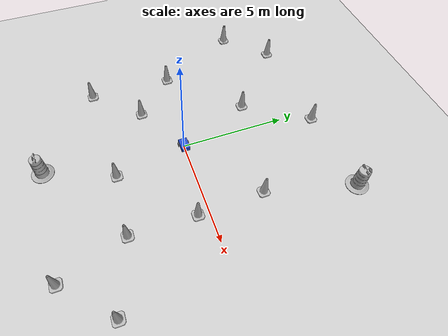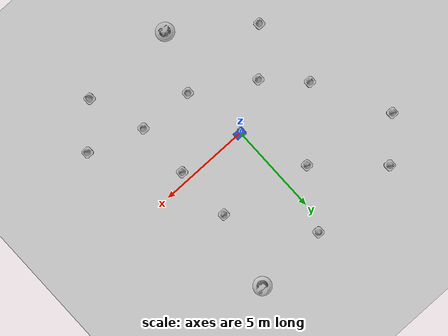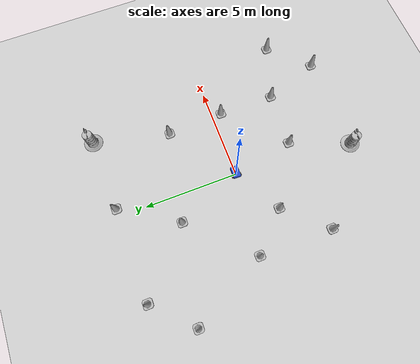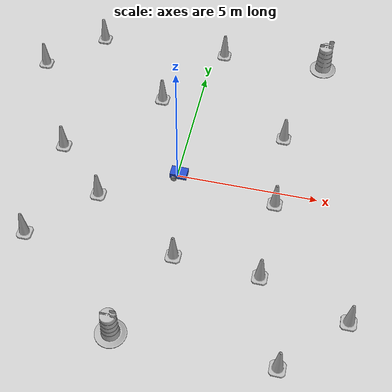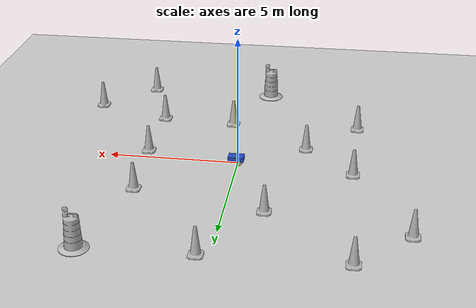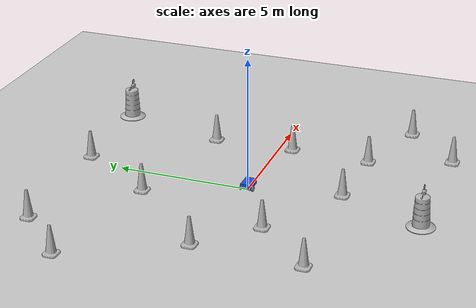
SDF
<sdf version="1.7">
 <world name="default">
  <light name="sun" type="directional">
   <pose>0 0 10 0 -0 0</pose>
   <diffuse>0.8 0.8 0.8 1</diffuse>
   <specular>0.2 0.2 0.2 1</specular>
   <attenuation>
    <range>1000</range>
    <constant>0.9</constant>
    <linear>0.01</linear>
    <quadratic>0.001</quadratic>
   </attenuation>
   <direction>-0.5 0.1 -0.9</direction>
   <spot><inner_angle>0</inner_angle><outer_angle>0</outer_angle><falloff>0</falloff></spot>
  </light>
  <model name="ground_plane">
   <static>1</static>
   <link name="link">
    <collision name="collision">
     <geometry><plane><normal>0 0 1</normal><size>100 100</size></plane></geometry>
     <surface><friction><ode><mu>100</mu><mu2>50</mu2></ode></friction></surface>
    </collision>
    <visual name="visual">
     <cast_shadows>0</cast_shadows>
     <geometry><plane><normal>0 0 1</normal><size>100 100</size></plane></geometry>
     <material>
      <script><uri>file://media/materials/scripts/gazebo.material</uri><name>Gazebo/Grey</name></script>
     </material>
    </visual>
   </link>
  </model>
  <gravity>0 0 -9.8</gravity>
  <magnetic_field>6e-06 2.3e-05 -4.2e-05</magnetic_field>
  <atmosphere type="adiabatic"/>
  <physics type="ode">
   <max_step_size>0.001</max_step_size>
   <real_time_factor>1</real_time_factor>
   <real_time_update_rate>1000</real_time_update_rate>
  </physics>
  <scene><ambient>0.4 0.4 0.4 1</ambient><background>0.7 0.7 0.7 1</background><shadows>1</shadows></scene>
  <audio><device>default</device></audio>
  <spherical_coordinates>
   <surface_model>EARTH_WGS84</surface_model>
   <latitude_deg>0</latitude_deg>
   <longitude_deg>0</longitude_deg>
   <elevation>0</elevation>
   <heading_deg>0</heading_deg>
  </spherical_coordinates>
  <model name="my_bot">
   <link name="base_footprint">
    <inertial>
     <pose>0.018182 0 0.186364 0 -0 0</pose>
     <mass>5.5</mass>
     <inertia>
      <ixx>0.678894</ixx>
      <ixy>0</ixy>
      <ixz>0.0136364</ixz>
      <iyy>0.897076</iyy>
      <iyz>0</iyz>
      <izz>0.353515</izz>
     </inertia>
    </inertial>
    <collision name="base_footprint_fixed_joint_lump__base_link_collision">
     <pose>0 0 0.2 0 -0 0</pose>
     <geometry><box><size>0.6 0.4 0.2</size></box></geometry>
    </collision>
    <collision name="base_footprint_fixed_joint_lump__caster_wheel_link_collision_1">
     <pose>0.2 0 0.05 0 -0 0</pose>
     <geometry><sphere><radius>0.05</radius></sphere></geometry>
     <surface><friction><ode><mu>0.1</mu><mu2>0.1</mu2></ode></friction></surface>
    </collision>
    <visual name="base_footprint_fixed_joint_lump__base_link_visual">
     <pose>0 0 0.2 0 -0 0</pose>
     <geometry><box><size>0.6 0.4 0.2</size></box></geometry>
     <material>
      <script><name>Gazebo/Blue</name><uri>file://media/materials/scripts/gazebo.material</uri></script>
     </material>
    </visual>
    <visual name="base_footprint_fixed_joint_lump__caster_wheel_link_visual_1">
     <pose>0.2 0 0.05 0 -0 0</pose>
     <geometry><sphere><radius>0.05</radius></sphere></geometry>
     <material>
      <script><name>Gazebo/Grey</name><uri>file://media/materials/scripts/gazebo.material</uri></script>
     </material>
    </visual>
   </link>
   <joint name="base_left_wheel_joint" type="revolute">
    <pose relative_to="base_footprint">-0.15 0.225 0.1 0 -0 0</pose>
    <parent>base_footprint</parent>
    <child>left_wheel_link</child>
    <axis>
     <xyz>0 1 0</xyz>
     <limit><lower>-1e+16</lower><upper>1e+16</upper></limit>
     <dynamics><spring_reference>0</spring_reference><spring_stiffness>0</spring_stiffness></dynamics>
    </axis>
   </joint>
   <link name="left_wheel_link">
    <pose relative_to="base_left_wheel_joint">0 0 0 0 -0 0</pose>
    <inertial>
     <pose>0 0 0 1.5708 -0 0</pose>
     <mass>1</mass>
     <inertia><ixx>0.0108333</ixx><ixy>0</ixy><ixz>0</ixz><iyy>0.0108333</iyy><iyz>0</iyz><izz>0.02</izz></inertia>
    </inertial>
    <collision name="left_wheel_link_collision">
     <pose>0 0 0 1.5708 -0 0</pose>
     <geometry><cylinder><length>0.05</length><radius>0.1</radius></cylinder></geometry>
    </collision>
    <visual name="left_wheel_link_visual">
     <pose>0 0 0 1.5708 -0 0</pose>
     <geometry><cylinder><length>0.05</length><radius>0.1</radius></cylinder></geometry>
     <material>
      <script><name>Gazebo/Grey</name><uri>file://media/materials/scripts/gazebo.material</uri></script>
     </material>
    </visual>
   </link>
   <joint name="base_right_wheel_joint" type="revolute">
    <pose relative_to="base_footprint">-0.15 -0.225 0.1 0 -0 0</pose>
    <parent>base_footprint</parent>
    <child>right_wheel_link</child>
    <axis>
     <xyz>0 1 0</xyz>
     <limit><lower>-1e+16</lower><upper>1e+16</upper></limit>
     <dynamics><spring_reference>0</spring_reference><spring_stiffness>0</spring_stiffness></dynamics>
    </axis>
   </joint>
   <link name="right_wheel_link">
    <pose relative_to="base_right_wheel_joint">0 0 0 0 -0 0</pose>
    <inertial>
     <pose>0 0 0 1.5708 -0 0</pose>
     <mass>1</mass>
     <inertia><ixx>0.0108333</ixx><ixy>0</ixy><ixz>0</ixz><iyy>0.0108333</iyy><iyz>0</iyz><izz>0.02</izz></inertia>
    </inertial>
    <collision name="right_wheel_link_collision">
     <pose>0 0 0 1.5708 -0 0</pose>
     <geometry><cylinder><length>0.05</length><radius>0.1</radius></cylinder></geometry>
    </collision>
    <visual name="right_wheel_link_visual">
     <pose>0 0 0 1.5708 -0 0</pose>
     <geometry><cylinder><length>0.05</length><radius>0.1</radius></cylinder></geometry>
     <material>
      <script><name>Gazebo/Grey</name><uri>file://media/materials/scripts/gazebo.material</uri></script>
     </material>
    </visual>
   </link>
   <static>0</static>
   <plugin name="diff_drive_controller" filename="libgazebo_ros_diff_drive.so">
    <update_rate>50</update_rate>
    <left_joint>base_left_wheel_joint</left_joint>
    <right_joint>base_right_wheel_joint</right_joint>
    <wheel_separation>0.45</wheel_separation>
    <wheel_diameter>0.2</wheel_diameter>
    <publish_odom>1</publish_odom>
    <publish_odom_tf>1</publish_odom_tf>
    <publish_wheel_tf>1</publish_wheel_tf>
    <odometry_topic>odom</odometry_topic>
    <odometry_frame>odom</odometry_frame>
    <robot_base_frame>base_footprint</robot_base_frame>
   </plugin>
   <pose>0.061592 0.003699 0 0 0 -0.012782</pose>
  </model>
  <model name="Construction Cone">
   <link name="link">
    <collision name="collision">
     <geometry>
      <mesh><scale>10 10 10</scale><uri>model://construction_cone/meshes/construction_cone.dae</uri></mesh>
     </geometry>
    </collision>
    <visual name="visual">
     <geometry>
      <mesh><scale>10 10 10</scale><uri>model://construction_cone/meshes/construction_cone.dae</uri></mesh>
     </geometry>
    </visual>
    <inertial>
     <inertia><ixx>1</ixx><ixy>0</ixy><ixz>0</ixz><iyy>1</iyy><iyz>0</iyz><izz>1</izz></inertia>
     <mass>1</mass>
    </inertial>
   </link>
   <pose>0.632065 -3.33861 -0 0 -0 0</pose>
  </model>
  <model name="Construction Cone_0">
   <link name="link">
    <collision name="collision">
     <geometry>
      <mesh><scale>10 10 10</scale><uri>model://construction_cone/meshes/construction_cone.dae</uri></mesh>
     </geometry>
    </collision>
    <visual name="visual">
     <geometry>
      <mesh><scale>10 10 10</scale><uri>model://construction_cone/meshes/construction_cone.dae</uri></mesh>
     </geometry>
    </visual>
    <inertial>
     <inertia><ixx>1</ixx><ixy>0</ixy><ixz>0</ixz><iyy>1</iyy><iyz>0</iyz><izz>1</izz></inertia>
     <mass>1</mass>
    </inertial>
   </link>
   <pose>3.54848 -3.51604 -8e-06 -5e-06 -0 -0</pose>
  </model>
  <model name="Construction Cone_1">
   <link name="link">
    <collision name="collision">
     <geometry>
      <mesh><scale>10 10 10</scale><uri>model://construction_cone/meshes/construction_cone.dae</uri></mesh>
     </geometry>
    </collision>
    <visual name="visual">
     <geometry>
      <mesh><scale>10 10 10</scale><uri>model://construction_cone/meshes/construction_cone.dae</uri></mesh>
     </geometry>
    </visual>
    <inertial>
     <inertia><ixx>1</ixx><ixy>0</ixy><ixz>0</ixz><iyy>1</iyy><iyz>0</iyz><izz>1</izz></inertia>
     <mass>1</mass>
    </inertial>
   </link>
   <pose>3.58464 -0.513286 -0 0 -0 0</pose>
  </model>
  <model name="Construction Cone_2">
   <link name="link">
    <collision name="collision">
     <geometry>
      <mesh><scale>10 10 10</scale><uri>model://construction_cone/meshes/construction_cone.dae</uri></mesh>
     </geometry>
    </collision>
    <visual name="visual">
     <geometry>
      <mesh><scale>10 10 10</scale><uri>model://construction_cone/meshes/construction_cone.dae</uri></mesh>
     </geometry>
    </visual>
    <inertial>
     <inertia><ixx>1</ixx><ixy>0</ixy><ixz>0</ixz><iyy>1</iyy><iyz>0</iyz><izz>1</izz></inertia>
     <mass>1</mass>
    </inertial>
   </link>
   <pose>3.45677 2.54291 -0 0 -0 0</pose>
  </model>
  <model name="Construction Cone_3">
   <link name="link">
    <collision name="collision">
     <geometry>
      <mesh><scale>10 10 10</scale><uri>model://construction_cone/meshes/construction_cone.dae</uri></mesh>
     </geometry>
    </collision>
    <visual name="visual">
     <geometry>
      <mesh><scale>10 10 10</scale><uri>model://construction_cone/meshes/construction_cone.dae</uri></mesh>
     </geometry>
    </visual>
    <inertial>
     <inertia><ixx>1</ixx><ixy>0</ixy><ixz>0</ixz><iyy>1</iyy><iyz>0</iyz><izz>1</izz></inertia>
     <mass>1</mass>
    </inertial>
   </link>
   <pose>0.457571 6.4794 -0 0 -0 0</pose>
  </model>
  <model name="Construction Cone_4">
   <link name="link">
    <collision name="collision">
     <geometry>
      <mesh><scale>10 10 10</scale><uri>model://construction_cone/meshes/construction_cone.dae</uri></mesh>
     </geometry>
    </collision>
    <visual name="visual">
     <geometry>
      <mesh><scale>10 10 10</scale><uri>model://construction_cone/meshes/construction_cone.dae</uri></mesh>
     </geometry>
    </visual>
    <inertial>
     <inertia><ixx>1</ixx><ixy>0</ixy><ixz>0</ixz><iyy>1</iyy><iyz>0</iyz><izz>1</izz></inertia>
     <mass>1</mass>
    </inertial>
   </link>
   <pose>-4.4767 -3.51332 -0 0 -0 0</pose>
  </model>
  <model name="Construction Cone_5">
   <link name="link">
    <collision name="collision">
     <geometry>
      <mesh><scale>10 10 10</scale><uri>model://construction_cone/meshes/construction_cone.dae</uri></mesh>
     </geometry>
    </collision>
    <visual name="visual">
     <geometry>
      <mesh><scale>10 10 10</scale><uri>model://construction_cone/meshes/construction_cone.dae</uri></mesh>
     </geometry>
    </visual>
    <inertial>
     <inertia><ixx>1</ixx><ixy>0</ixy><ixz>0</ixz><iyy>1</iyy><iyz>0</iyz><izz>1</izz></inertia>
     <mass>1</mass>
    </inertial>
   </link>
   <pose>-2.5187 -1.42002 -0 0 -0 0</pose>
  </model>
  <model name="Construction Cone_6">
   <link name="link">
    <collision name="collision">
     <geometry>
      <mesh><scale>10 10 10</scale><uri>model://construction_cone/meshes/construction_cone.dae</uri></mesh>
     </geometry>
    </collision>
    <visual name="visual">
     <geometry>
      <mesh><scale>10 10 10</scale><uri>model://construction_cone/meshes/construction_cone.dae</uri></mesh>
     </geometry>
    </visual>
    <inertial>
     <inertia><ixx>1</ixx><ixy>0</ixy><ixz>0</ixz><iyy>1</iyy><iyz>0</iyz><izz>1</izz></inertia>
     <mass>1</mass>
    </inertial>
   </link>
   <pose>-4.40108 0.452792 -5e-06 -4e-06 1e-06 0</pose>
  </model>
  <model name="Construction Cone_7">
   <link name="link">
    <collision name="collision">
     <geometry>
      <mesh><scale>10 10 10</scale><uri>model://construction_cone/meshes/construction_cone.dae</uri></mesh>
     </geometry>
    </collision>
    <visual name="visual">
     <geometry>
      <mesh><scale>10 10 10</scale><uri>model://construction_cone/meshes/construction_cone.dae</uri></mesh>
     </geometry>
    </visual>
    <inertial>
     <inertia><ixx>1</ixx><ixy>0</ixy><ixz>0</ixz><iyy>1</iyy><iyz>0</iyz><izz>1</izz></inertia>
     <mass>1</mass>
    </inertial>
   </link>
   <pose>-4.56313 6.38217 -4e-06 4e-06 -1e-06 0</pose>
  </model>
  <model name="Construction Cone_8">
   <link name="link">
    <collision name="collision">
     <geometry>
      <mesh><scale>10 10 10</scale><uri>model://construction_cone/meshes/construction_cone.dae</uri></mesh>
     </geometry>
    </collision>
    <visual name="visual">
     <geometry>
      <mesh><scale>10 10 10</scale><uri>model://construction_cone/meshes/construction_cone.dae</uri></mesh>
     </geometry>
    </visual>
    <inertial>
     <inertia><ixx>1</ixx><ixy>0</ixy><ixz>0</ixz><iyy>1</iyy><iyz>0</iyz><izz>1</izz></inertia>
     <mass>1</mass>
    </inertial>
   </link>
   <pose>-1.41366 3.5274 -0 0 -0 0</pose>
  </model>
  <model name="Construction Cone_9">
   <link name="link">
    <collision name="collision">
     <geometry>
      <mesh><scale>10 10 10</scale><uri>model://construction_cone/meshes/construction_cone.dae</uri></mesh>
     </geometry>
    </collision>
    <visual name="visual">
     <geometry>
      <mesh><scale>10 10 10</scale><uri>model://construction_cone/meshes/construction_cone.dae</uri></mesh>
     </geometry>
    </visual>
    <inertial>
     <inertia><ixx>1</ixx><ixy>0</ixy><ixz>0</ixz><iyy>1</iyy><iyz>0</iyz><izz>1</izz></inertia>
     <mass>1</mass>
    </inertial>
   </link>
   <pose>-6.46809 4.47672 -0 0 -0 0</pose>
  </model>
  <model name="Construction Barrel">
   <link name="link">
    <inertial>
     <pose>0 0 0.4 0 -0 0</pose>
     <mass>500</mass>
     <inertia><ixx>51.2096</ixx><iyy>51.2096</iyy><izz>25</izz><ixy>0</ixy><ixz>0</ixz><iyz>0</iyz></inertia>
    </inertial>
    <collision name="collision">
     <geometry><mesh><uri>model://construction_barrel/meshes/construction_barrel.dae</uri></mesh></geometry>
    </collision>
    <visual name="visual">
     <geometry><mesh><uri>model://construction_barrel/meshes/construction_barrel.dae</uri></mesh></geometry>
    </visual>
   </link>
   <pose>4.45193 6.6029 -2e-06 -0 7e-06 -8e-06</pose>
  </model>
  <model name="Construction Barrel_0">
   <link name="link">
    <inertial>
     <pose>0 0 0.4 0 -0 0</pose>
     <mass>500</mass>
     <inertia><ixx>51.2096</ixx><iyy>51.2096</iyy><izz>25</izz><ixy>0</ixy><ixz>0</ixz><iyz>0</iyz></inertia>
    </inertial>
    <collision name="collision">
     <geometry><mesh><uri>model://construction_barrel/meshes/construction_barrel.dae</uri></mesh></geometry>
    </collision>
    <visual name="visual">
     <geometry><mesh><uri>model://construction_barrel/meshes/construction_barrel.dae</uri></mesh></geometry>
    </visual>
   </link>
   <pose>-0.608454 -6.45997 -1e-06 3e-06 1e-05 -7e-06</pose>
  </model>
  <model name="Construction Cone_10">
   <link name="link">
    <collision name="collision">
     <geometry>
      <mesh><scale>10 10 10</scale><uri>model://construction_cone/meshes/construction_cone.dae</uri></mesh>
     </geometry>
    </collision>
    <visual name="visual">
     <geometry>
      <mesh><scale>10 10 10</scale><uri>model://construction_cone/meshes/construction_cone.dae</uri></mesh>
     </geometry>
    </visual>
    <inertial>
     <inertia><ixx>1</ixx><ixy>0</ixy><ixz>0</ixz><iyy>1</iyy><iyz>0</iyz><izz>1</izz></inertia>
     <mass>1</mass>
    </inertial>
   </link>
   <pose>4.57383 -6.49972 -0 0 -0 0</pose>
  </model>
  <model name="Construction Cone_11">
   <link name="link">
    <collision name="collision">
     <geometry>
      <mesh><scale>10 10 10</scale><uri>model://construction_cone/meshes/construction_cone.dae</uri></mesh>
     </geometry>
    </collision>
    <visual name="visual">
     <geometry>
      <mesh><scale>10 10 10</scale><uri>model://construction_cone/meshes/construction_cone.dae</uri></mesh>
     </geometry>
    </visual>
    <inertial>
     <inertia><ixx>1</ixx><ixy>0</ixy><ixz>0</ixz><iyy>1</iyy><iyz>0</iyz><izz>1</izz></inertia>
     <mass>1</mass>
    </inertial>
   </link>
   <pose>6.50618 -4.52307 -0 0 -1e-06 0</pose>
  </model>
 </world>
</sdf>
